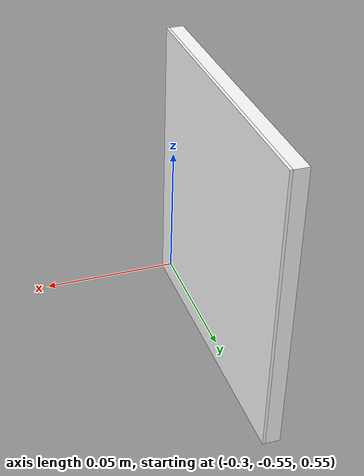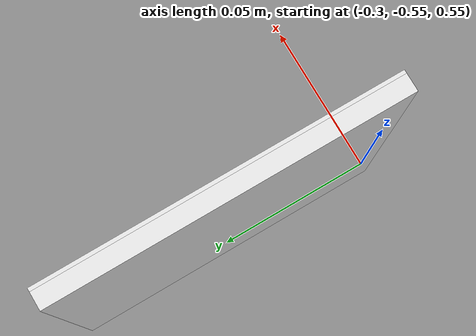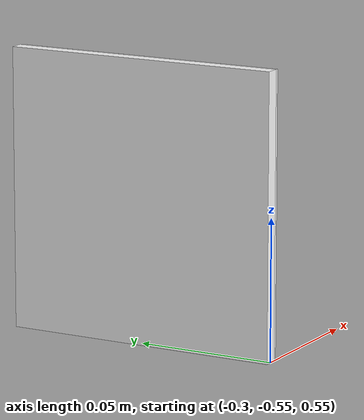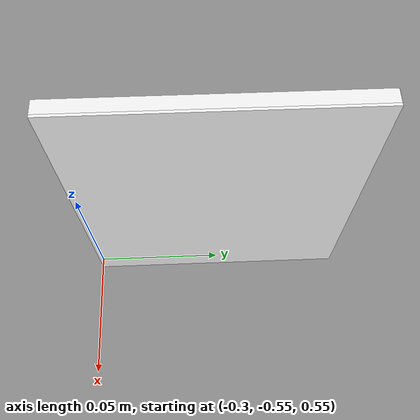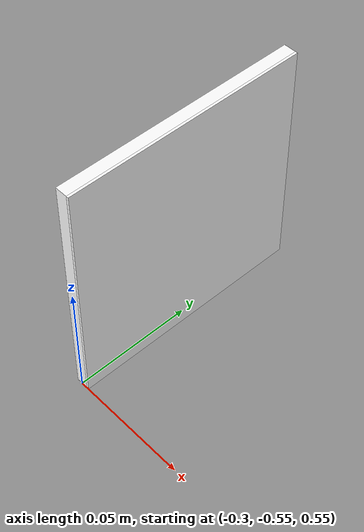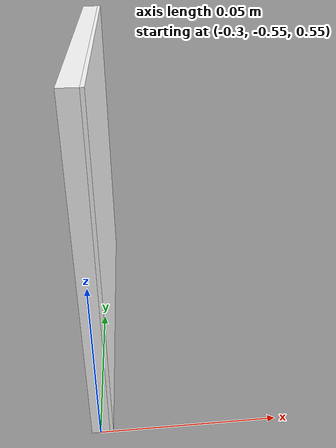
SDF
<?xml version="1.0" ?>
<sdf version="1.4">
  <!-- We use a custom world for the rrbot so that the camera angle is launched correctly -->

  <world name="default">
    <!-- Included light -->
    <include>
      <uri>https://fuel.gazebosim.org/1.0/OpenRobotics/models/Sun</uri>
    </include>

    <!-- Included model -->
    <include>
      <uri>https://fuel.gazebosim.org/1.0/OpenRobotics/models/Ground Plane</uri>
    </include>

    <include>
      <uri>
        model://arucotag
      </uri>
      <name>arucotag</name>
      <pose>-0.3 -0.5 0.6 1.57 1.57 1.57</pose>
      <static>false</static>
    </include>

    <gravity>0 0 0</gravity>

    <!-- Focus camera on tall pendulum -->
    <gui fullscreen='0'>
      <camera name='user_camera'>
        <pose>4.927360 -4.376610 3.740080 0.000000 0.275643 2.356190</pose>
        <view_controller>orbit</view_controller>
      </camera>
    </gui>

    <!-- World control -->

  </world>
</sdf>

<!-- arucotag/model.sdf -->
<sdf version='1.9'>
  <model name='arucotag'>
    <static>true</static>
    <pose>0 0 0.001 0 0 0</pose>
    <link name="link">
      <inertial>
        <pose>0 0 0 0 0 0</pose>
        <mass>0.0001</mass>
        <inertia>
          <ixx>1.6667e-07</ixx>
          <ixy>0.0</ixy>
          <ixz>0.0</ixz>
          <iyy>1.6667e-07</iyy>
          <iyz>0.0</iyz>
          <izz>1.6667e-07</izz>
        </inertia>
      </inertial>
      <collision name="collision">
        <geometry>
          <box><size>0.1 0.1 0.005</size></box>
        </geometry>
      </collision>

      <visual name="visual_body">
        <geometry>
          <box><size>0.1 0.1 0.005</size></box>
        </geometry>
        <material>
          <ambient>1 1 1 1</ambient>
          <diffuse>1 1 1 1</diffuse>
          <specular>0.4 0.4 0.4 1</specular>
        </material>
      </visual>

      <visual name="visual_tag_face">
        <pose>0 0 0.003 0 0 0</pose>
        <geometry>
          <box><size>0.1 0.1 0.001</size></box>
        </geometry>
        <material>
          <pbr>
            <metal>
              <albedo_map>model://arucotag/aruco-6.png</albedo_map>
            </metal>
          </pbr>
          <ambient>1 1 1 1</ambient>
          <diffuse>1 1 1 1</diffuse>
          <specular>0 0 0 1</specular>
        </material>
      </visual>
    </link>
  </model> </sdf>
